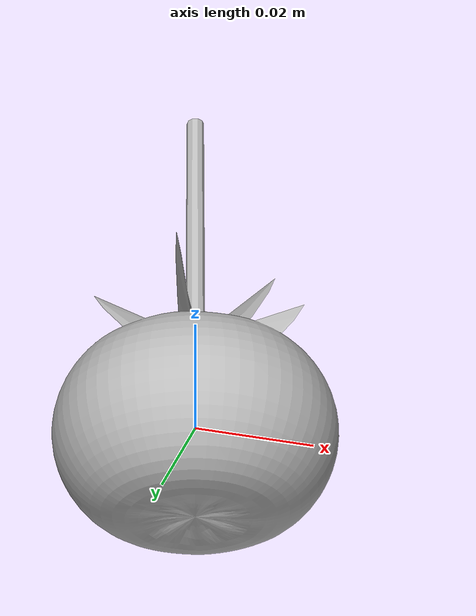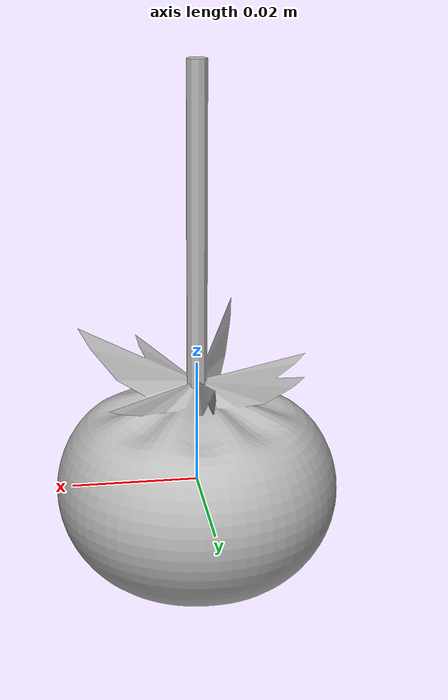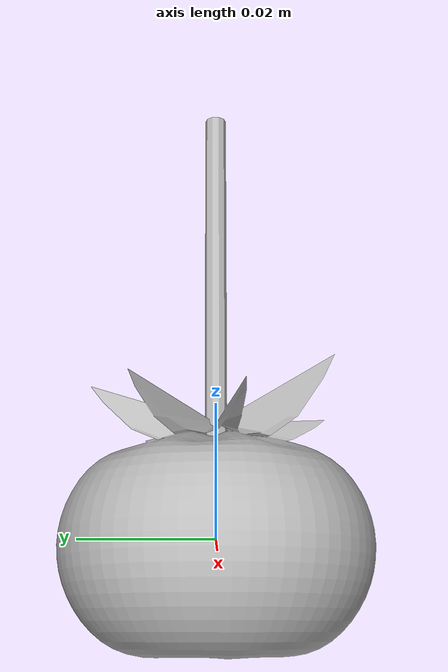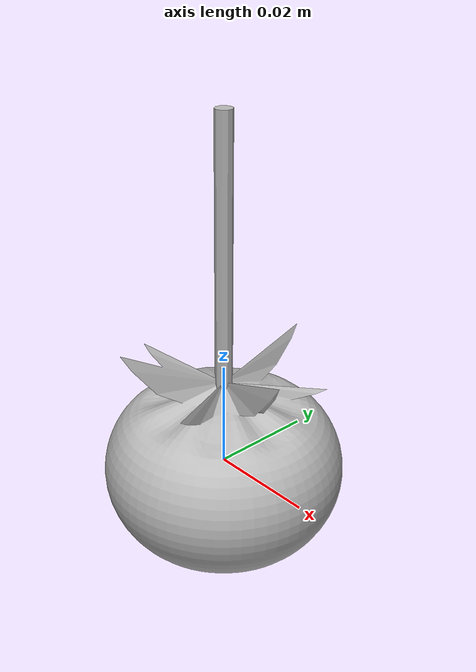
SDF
<?xml version="1.0"?>
<sdf version="1.6">
    <model name="yellow_tomato">
      <link name="tomato_link">
        <visual name="visual">
          <geometry>
            <mesh><uri>model://yellow_tomato/meshes/yellow_tomato.obj</uri></mesh>
          </geometry>
        </visual>
        <collision name="collision">
          <geometry>
            <mesh><uri>model://yellow_tomato/meshes/yellow_tomato.obj</uri></mesh>
          </geometry>
        </collision>
      </link>
    </model>
</sdf>
